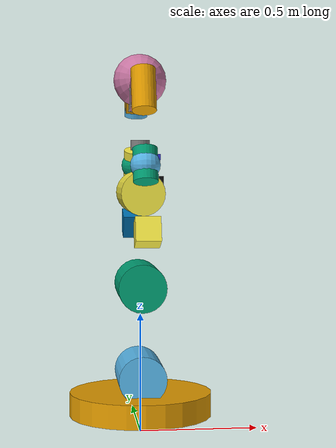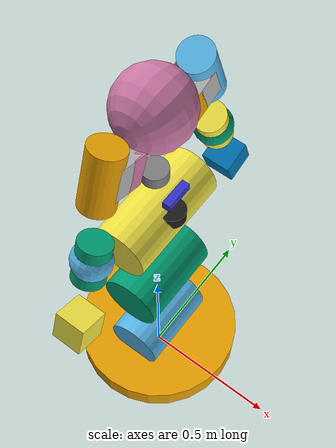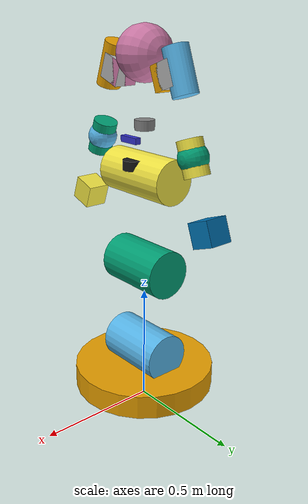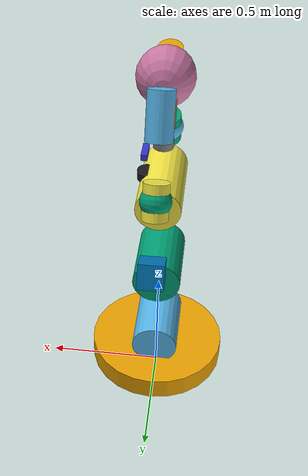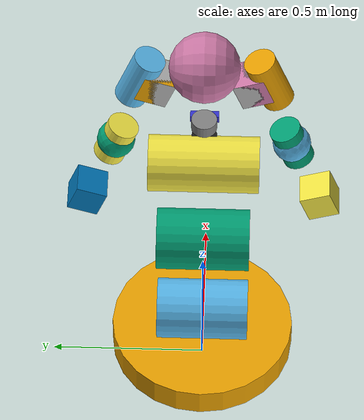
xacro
<?xml version="1.0"?>
<robot xmlns:xacro="http://www.ros.org/wiki/xacro" name="astribot_s1">

  <!-- Base URDF (copied from fiveages-sim/robot_descriptions with mesh paths fixed) -->
  <xacro:include filename="$(find astribot_description)/urdf/astribot_s1_base.urdf"/>

  <!-- ─── World anchor ─────────────────────────────────────────── -->
  <link name="world"/>

  <joint name="world_to_base_link" type="fixed">
    <parent link="world"/>
    <child  link="base_link"/>
    <!-- z=0.12: approximate wheel radius — adjust after visual inspection -->
    <origin xyz="0 0 0.12" rpy="0 0 0"/>
  </joint>

  <!-- ─── 2D LiDAR link ────────────────────────────────────────── -->
  <link name="lidar_2d_link">
    <visual>
      <geometry><cylinder radius="0.04" length="0.04"/></geometry>
      <material name="black"><color rgba="0.1 0.1 0.1 1"/></material>
    </visual>
    <collision>
      <geometry><cylinder radius="0.04" length="0.04"/></geometry>
    </collision>
    <inertial>
      <mass value="0.1"/>
      <inertia ixx="1e-4" ixy="0" ixz="0" iyy="1e-4" iyz="0" izz="1e-4"/>
    </inertial>
  </link>

  <joint name="torso_to_lidar_2d" type="fixed">
    <parent link="torso_link_4"/>
    <child  link="lidar_2d_link"/>
    <origin xyz="0.06 0 0.05" rpy="0 0 0"/>
  </joint>

  <!-- ─── 3D LiDAR link ────────────────────────────────────────── -->
  <link name="mid360_link">
    <visual>
      <geometry><cylinder radius="0.04" length="0.04"/></geometry>
      <material name="grey"><color rgba="0.5 0.5 0.5 1"/></material>
    </visual>
    <collision>
      <geometry><cylinder radius="0.04" length="0.04"/></geometry>
    </collision>
    <inertial>
      <mass value="0.1"/>
      <inertia ixx="1e-4" ixy="0" ixz="0" iyy="1e-4" iyz="0" izz="1e-4"/>
    </inertial>
  </link>

  <joint name="torso_to_mid360" type="fixed">
    <parent link="torso_link_4"/>
    <child  link="mid360_link"/>
    <origin xyz="0.0 0 0.20" rpy="0 0 0"/>
  </joint>

  <!-- ─── RGB Camera link ──────────────────────────────────────── -->
  <link name="d435_link">
    <visual>
      <geometry><box size="0.025 0.090 0.025"/></geometry>
      <material name="blue"><color rgba="0.2 0.2 0.8 1"/></material>
    </visual>
    <collision>
      <geometry><box size="0.025 0.090 0.025"/></geometry>
    </collision>
    <inertial>
      <mass value="0.072"/>
      <inertia ixx="1e-4" ixy="0" ixz="0" iyy="1e-4" iyz="0" izz="1e-4"/>
    </inertial>
  </link>

  <joint name="torso_to_d435" type="fixed">
    <parent link="torso_link_4"/>
    <child  link="d435_link"/>
    <origin xyz="0.07 0 0.15" rpy="0 0 0"/>
  </joint>

  <!-- ─── IMU link ─────────────────────────────────────────────── -->
  <link name="imu_link">
    <inertial>
      <mass value="0.01"/>
      <inertia ixx="1e-6" ixy="0" ixz="0" iyy="1e-6" iyz="0" izz="1e-6"/>
    </inertial>
  </link>

  <joint name="base_to_imu" type="fixed">
    <parent link="base_link"/>
    <child  link="imu_link"/>
    <origin xyz="0 0 0.05" rpy="0 0 0"/>
  </joint>

  <!--  Gazebo sensor plugins                                      -->

  <!-- 2D LiDAR → /scan -->
  <gazebo reference="lidar_2d_link">
    <sensor name="lidar_2d" type="ray">
      <always_on>true</always_on>
      <update_rate>15</update_rate>
      <visualize>false</visualize>
      <ray>
        <scan>
          <horizontal>
            <samples>720</samples>
            <resolution>1</resolution>
            <min_angle>-3.14159</min_angle>
            <max_angle>3.14159</max_angle>
          </horizontal>
        </scan>
        <range>
          <min>0.10</min>
          <max>30.0</max>
          <resolution>0.01</resolution>
        </range>
      </ray>
      <plugin name="lidar_2d_plugin" filename="libgazebo_ros_ray_sensor.so">
        <ros><remapping>~/out:=/scan</remapping></ros>
        <output_type>sensor_msgs/LaserScan</output_type>
        <frame_name>lidar_2d_link</frame_name>
      </plugin>
    </sensor>
  </gazebo>

  <!-- 3D LiDAR → /points -->
  <gazebo reference="mid360_link">
    <sensor name="mid360" type="gpu_ray">
      <always_on>true</always_on>
      <update_rate>10</update_rate>
      <visualize>false</visualize>
      <ray>
        <scan>
          <horizontal>
            <samples>360</samples>
            <resolution>1</resolution>
            <min_angle>-3.14159</min_angle>
            <max_angle>3.14159</max_angle>
          </horizontal>
          <vertical>
            <samples>30</samples>
            <resolution>1</resolution>
            <min_angle>-0.5236</min_angle>
            <max_angle>0.5236</max_angle>
          </vertical>
        </scan>
        <range>
          <min>0.10</min>
          <max>40.0</max>
          <resolution>0.01</resolution>
        </range>
      </ray>
      <plugin name="mid360_plugin" filename="libgazebo_ros_ray_sensor.so">
        <ros><remapping>~/out:=/points</remapping></ros>
        <output_type>sensor_msgs/PointCloud2</output_type>
        <frame_name>mid360_link</frame_name>
      </plugin>
    </sensor>
  </gazebo>

  <!-- RGB Camera → /camera/image_raw -->
  <gazebo reference="d435_link">
    <sensor name="d435_camera" type="camera">
      <always_on>true</always_on>
      <update_rate>30</update_rate>
      <visualize>false</visualize>
      <camera>
        <horizontal_fov>1.2217</horizontal_fov>
        <image>
          <width>640</width>
          <height>480</height>
          <format>R8G8B8</format>
        </image>
        <clip><near>0.02</near><far>100.0</far></clip>
      </camera>
      <plugin name="camera_plugin" filename="libgazebo_ros_camera.so">
        <camera_name>camera</camera_name>
        <frame_name>d435_link</frame_name>
      </plugin>
    </sensor>
  </gazebo>

  <!-- Depth Camera → /camera/depth/depth/image_raw + /camera/depth/points -->
  <gazebo reference="d435_link">
    <sensor name="d435_depth" type="depth">
      <always_on>true</always_on>
      <update_rate>15</update_rate>
      <visualize>false</visualize>
      <camera name="depth_camera">
        <horizontal_fov>1.2217</horizontal_fov>
        <image>
          <width>640</width>
          <height>480</height>
          <format>R32F</format>
        </image>
        <clip><near>0.1</near><far>10.0</far></clip>
      </camera>
      <plugin name="depth_camera_plugin" filename="libgazebo_ros_camera.so">
        <ros>
          <namespace>/camera</namespace>
        </ros>
        <camera_name>rgbd</camera_name>
        <frame_name>d435_link</frame_name>
        <min_depth>0.1</min_depth>
        <max_depth>10.0</max_depth>
      </plugin>
    </sensor>
  </gazebo>

  <!-- IMU → /imu/data -->
  <gazebo reference="imu_link">
    <sensor name="imu_sensor" type="imu">
      <always_on>true</always_on>
      <update_rate>200</update_rate>
      <plugin name="imu_plugin" filename="libgazebo_ros_imu_sensor.so">
        <ros><remapping>~/out:=/imu/data</remapping></ros>
        <frame_name>imu_link</frame_name>
      </plugin>
    </sensor>
  </gazebo>

</robot>

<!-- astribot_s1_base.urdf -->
<!-- |    This document was autogenerated by xacro from astribot_s1_whole_body_without_wheel.xacro | -->
<!-- |    EDITING THIS FILE BY HAND IS NOT RECOMMENDED                                 | -->
<!-- run: xacro astribot_s1_whole_body.xacro -o astribot_s1_whole_body.urdf to generate the following .urdf file -->
<robot name="astribot_s1">

	<link name="base_link">
		<inertial>
			<origin xyz="-0.062784 0.007017 0.035375" />
			<mass value="39.24781" />
			<inertia ixx="1.071997" ixy="0.015889" ixz="-0.058447" iyy="1.218431" iyz="-0.002015" izz="1.489411" />
		</inertial>
		<visual>
			<geometry>
				<cylinder length="0.1" radius="0.3" />
			</geometry>
		</visual>
		<collision>
			<origin xyz="0 0 -0.05" />
			<geometry>
				<cylinder length="0.1" radius="0.3" />
			</geometry>
		</collision>
	</link>
	<link name="torso_link_1">
		<inertial>
			<origin xyz="-0.15249 0.00021066 -0.0033476" />
			<mass value="7.3766" />
			<inertia ixx="0.028834" ixy="-0.0052759" ixz="0.00010767" iyy="0.1483" iyz="1.1652E-05" izz="0.14268" />
		</inertial>
		<visual>

			<geometry>
				<cylinder length="0.3" radius="0.1" />
			</geometry>
		</visual>
		<collision>
			<origin rpy="0 1.57 0" xyz="-0.15 0 0" />
			<geometry>
				<cylinder length="0.3" radius="0.1" />
			</geometry>
		</collision>
	</link>
	<joint name="torso_joint_1" type="revolute">
		<origin rpy="-1.5708 1.5708 0" xyz="0 0 0.12" />
		<parent link="base_link" />
		<child link="torso_link_1" />
		<axis xyz="0 0 1" />
		<limit effort="100" lower="0.0" upper="1.4" velocity="6.0" />
	</joint>
	<link name="torso_link_2">
		<inertial>
			<origin xyz="-0.22214 0.028873 0.00059024" />
			<mass value="5.6183" />
			<inertia ixx="0.0082545" ixy="0.0011523" ixz="0.00035614" iyy="0.012677" iyz="-5.8287E-05" izz="0.017512" />
		</inertial>
		<visual>

			<geometry>
				<cylinder length="0.3" radius="0.1" />
			</geometry>
		</visual>
		<collision>
			<origin rpy="0 1.57 -0.25" xyz="-0.15 0.03 0" />
			<geometry>
				<cylinder length="0.3" radius="0.1" />
			</geometry>
		</collision>
	</link>
	<joint name="torso_joint_2" type="revolute">
		<origin xyz="-0.38 0 0" />
		<parent link="torso_link_1" />
		<child link="torso_link_2" />
		<axis xyz="0 0 1" />
		<limit effort="100" lower="-2.3" upper="0.0" velocity="6.0" />
	</joint>
	<link name="torso_link_3">
		<inertial>
			<origin xyz="-0.017519 0.00059523 0.00025821" />
			<mass value="0.49013" />
			<inertia ixx="0.00022212" ixy="-2.6767E-07" ixz="4.3987E-07" iyy="0.00036522" iyz="3.8834E-07" izz="0.00038039" />
		</inertial>
		<visual>

			<geometry>
				<cylinder length="0.35" radius="0.09" />
			</geometry>
		</visual>
		<collision>
			<origin rpy="0 1.57 0" xyz="-0.18 0.01 0" />
			<geometry>
				<cylinder length="0.35" radius="0.09" />
			</geometry>
		</collision>
	</link>
	<joint name="torso_joint_3" type="revolute">
		<origin xyz="-0.390 0 0" />
		<parent link="torso_link_2" />
		<child link="torso_link_3" />
		<axis xyz="0 0 1" />
		<limit effort="100" lower="0.0" upper="2.3" velocity="6.0" />
	</joint>
	<link name="torso_link_4">
		<inertial>
			<origin xyz="0.00476227191516749 -4.56966810241128E-05 0.242912573510671" />
			<mass value="8.385" />
			<inertia ixx="0.0165768322563514" ixy="-9.94098112646385E-06" ixz="-0.000100011483384926" iyy="0.014904355097835" iyz="9.86752047032885E-07" izz="0.0110629318711333" />
		</inertial>
		<visual>

			<geometry>
				<box size="0.1 0.1 0.1" /></geometry>
		</visual>
	</link>
	<joint name="torso_joint_4" type="revolute">
		<origin rpy="1.5708 0 -1.5708" xyz="0 0 0" />
		<parent link="torso_link_3" />
		<child link="torso_link_4" />
		<axis xyz="0 0 1" />
		<limit effort="100" lower="-1.5" upper="1.5" velocity="6.0" />
	</joint>
	<link name="head_link_1">
		<inertial>
			<origin xyz="0.00003191 -0.00038566 -0.02579910" />
			<mass value="0.13910581" />
			<inertia ixx="0.00004567" ixy="0.00000003" ixz="0.00000004" iyy="0.00004789" iyz="-0.00000091" izz="0.00003779" />
		</inertial>
		<visual>

			<geometry>
				<box size="0.1 0.1 0.1" /></geometry>
		</visual>
	</link>
	<joint name="head_joint_1" type="revolute">
		<origin xyz="0 0 0.46765" />
		<parent link="torso_link_4" />
		<child link="head_link_1" />
		<axis xyz="0 0 1" />
		<limit effort="100" lower="-1.57" upper="1.57" velocity="4.0" />
	</joint>
	<link name="head_link_2">
		<inertial>
			<origin xyz="0.00705824 -0.14472601 -0.00061724" />
			<mass value="0.97012447" />
			<inertia ixx="0.00555660" ixy="-0.00041600" ixz="-0.00000036" iyy="0.00151908" iyz="-0.00012043" izz="0.00544493" />
		</inertial>
		<visual>

			<geometry>
				<sphere radius="0.11" />
			</geometry>
		</visual>
		<collision>
			<origin xyz="0 -0.15 0" />
			<geometry>
				<sphere radius="0.11" />
			</geometry>
		</collision>
	</link>
	<joint name="head_joint_2" type="revolute">
		<origin rpy="-1.5708 0 0" xyz="0 0 0" />
		<parent link="head_link_1" />
		<child link="head_link_2" />
		<axis xyz="0 0 1" />
		<limit effort="100" lower="-1.22" upper="1.22" velocity="4.0" />
	</joint>
	<link name="left_link_1">
		<inertial>
			<origin xyz="0.00012026 0.00047499 -0.05682561" />
			<mass value="0.59936716" />
			<inertia ixx="0.00064791" ixy="0.00000149" ixz="0.00000133" iyy="0.00065264" iyz="0.00000160" izz="0.00050137" />
		</inertial>
		<visual>

			<geometry>
				<box size="0.1 0.1 0.1" /></geometry>
		</visual>
	</link>
	<joint name="left_joint_1" type="revolute">
		<origin rpy="0 -1.22173 -1.5708" xyz="0 0.150002 0.399354" />
		<parent link="torso_link_4" />
		<child link="left_link_1" />
		<axis xyz="0 0 1" />
		<limit effort="265" lower="-3.0" upper="3.0" velocity="8.4" />
	</joint>
	<link name="left_link_2">
		<inertial>
			<origin xyz="-0.00396228 0.03490708 0.04270156" />
			<mass value="1.43694657" />
			<inertia ixx="0.00360751" ixy="-0.00009193" ixz="0.00007764" iyy="0.00283747" iyz="0.00054945" izz="0.00172927" />
		</inertial>
		<visual>

			<geometry>
				<box size="0.1 0.1 0.1" /></geometry>
		</visual>
	</link>
	<joint name="left_joint_2" type="revolute">
		<origin rpy="1.5708 0 0" xyz="0 0 0" />
		<parent link="left_link_1" />
		<child link="left_link_2" />
		<axis xyz="0 0 1" />
		<limit effort="265" lower="-1.4" upper="0.4" velocity="8.4" />
	</joint>
	<link name="left_link_3">
		<inertial>
			<origin xyz="0.00531263 0.00020707 0.16136713" />
			<mass value="2.0926399" />
			<inertia ixx="0.01752179" ixy="2.336e-05" ixz="0.00144018" iyy="0.01784671" iyz="-3.027e-05" izz="0.0021843" />
		</inertial>
		<visual>

			<geometry>
				<cylinder length="0.18" radius="0.05" />
			</geometry>
		</visual>
		<collision>
			<origin xyz="0 0 0.15" />
			<geometry>
				<cylinder length="0.18" radius="0.05" />
			</geometry>
		</collision>
	</link>
	<joint name="left_joint_3" type="revolute">
		<origin rpy="1.5708 0 -1.5708" xyz="0 0.05 0" />
		<parent link="left_link_2" />
		<child link="left_link_3" />
		<axis xyz="0 0 1" />
		<limit effort="132" lower="-3.0" upper="1.4" velocity="8.4" />
	</joint>
	<link name="left_link_4">
		<inertial>
			<origin xyz="0.00017294 -0.01269315 0.00196140" />
			<mass value="0.36587933" />
			<inertia ixx="0.00047693" ixy="0.00000635" ixz=" 0.00000135" iyy="0.00036801" iyz="0.00000705" izz="0.00050082" />
		</inertial>
		<visual>

			<geometry>
				<sphere radius="0.06" />
			</geometry>
		</visual>
		<collision>

			<geometry>
				<sphere radius="0.06" />
			</geometry>
		</collision>
	</link>
	<joint name="left_joint_4" type="revolute">
		<origin rpy="-1.5708 0 0" xyz="0.03 0 0.309" />
		<parent link="left_link_3" />
		<child link="left_link_4" />
		<axis xyz="0 0 1" />
		<limit effort="142" lower="0.0" upper="2.4" velocity="15" />
	</joint>
	<link name="left_link_5">
		<inertial>
			<origin xyz="-0.00032037 -0.00015185 0.15370447" />
			<mass value="1.24085064" />
			<inertia ixx="0.00454092" ixy="1.58e-06" ixz="-5.91e-06" iyy="0.00438922" iyz="-4.927e-05" izz="0.00079442" />
		</inertial>
		<visual>

			<geometry>
				<cylinder length="0.14" radius="0.05" />
			</geometry>
		</visual>
		<collision>
			<origin xyz="0 0 0.14" />
			<geometry>
				<cylinder length="0.14" radius="0.05" />
			</geometry>
		</collision>
	</link>
	<joint name="left_joint_5" type="revolute">
		<origin rpy="1.5708 0 0" xyz="0 0 0" />
		<parent link="left_link_4" />
		<child link="left_link_5" />
		<axis xyz="0 0 1" />
		<limit effort="71" lower="-2.0" upper="2.0" velocity="15" />
	</joint>
	<link name="left_link_6">
		<inertial>
			<origin xyz="-0.00010311 0.00001218 0.00013181" />
			<mass value="0.22465307" />
			<inertia ixx="0.00016474" ixy="0.00000007" ixz="0.00000025" iyy="0.00015608" iyz="0.00000018" izz="0.00008555" />
		</inertial>
		<visual>

			<geometry>
				<box size="0.1 0.1 0.1" /></geometry>
		</visual>
	</link>
	<joint name="left_joint_6" type="revolute">
		<origin rpy="-1.5708 0 0" xyz="0 0 0.277" />
		<parent link="left_link_5" />
		<child link="left_link_6" />
		<axis xyz="0 0 1" />
		<limit effort="20" lower="-0.6" upper="0.6" velocity="16.8" />
	</joint>
	<link name="left_link_7">
		<inertial>
			<origin xyz="4.333e-05 -0.00723447 -0.00362428" />
			<mass value="0.12772019" />
			<inertia ixx="0.00013672" ixy="1.6e-07" ixz="-2.4e-07" iyy="0.00010783" iyz="-3.35e-06" izz="5.858e-05" />
		</inertial>
		<visual>
			<geometry>
				<sphere radius="0.05" />
			</geometry>
		</visual>
		<collision>
			<origin xyz="0.006 0 0" />
			<geometry>
				<sphere radius="0.05" />
			</geometry>
		</collision>
	</link>

	<joint name="left_joint_7" type="revolute">
		<origin rpy="0 1.5708 0" xyz="0 0 0" />
		<parent link="left_link_6" />
		<child link="left_link_7" />
		<axis xyz="0 0 1" />
		<limit effort="20" lower="-1.4" upper="1.4" velocity="16.8" />
	</joint>

	<link name="right_link_1">
		<inertial>
			<origin xyz="0.00012026 0.00047499 -0.05682561" />
			<mass value="0.59936716" />
			<inertia ixx="0.00064791" ixy="0.00000149" ixz="0.00000133" iyy="0.00065264" iyz="0.00000160" izz="0.00050137" />
		</inertial>
		<visual>
			<geometry>
				<box size="0.1 0.1 0.1" /></geometry>
		</visual>
	</link>
	<joint name="right_joint_1" type="revolute">
		<origin rpy="0 -1.22173 1.5708" xyz="0 -0.150002 0.399354" />
		<parent link="torso_link_4" />
		<child link="right_link_1" />
		<axis xyz="0 0 1" />
		<limit effort="265" lower="-3.0" upper="3.0" velocity="8.4" />
	</joint>
	<link name="right_link_2">
		<inertial>
			<origin xyz="-0.00384709 0.03502105 -0.04050705" />
			<mass value="1.45811037" />
			<inertia ixx="0.00394196" ixy="-8.846e-05" ixz="-3.742e-05" iyy="0.00316298" iyz="-0.0007079" izz="0.00177295" />
		</inertial>
		<visual>

			<geometry>
				<box size="0.1 0.1 0.1" /></geometry>
		</visual>
	</link>
	<joint name="right_joint_2" type="revolute">
		<origin rpy="1.5708 0 0" xyz="0 0 0" />
		<parent link="right_link_1" />
		<child link="right_link_2" />
		<axis xyz="0 0 1" />
		<limit effort="265" lower="-1.4" upper="0.4" velocity="8.4" />
	</joint>
	<link name="right_link_3">
		<inertial>
			<origin xyz="0.00531263 0.00020707 0.16136713" />
			<mass value="2.0926399" />
			<inertia ixx="0.01752179" ixy="2.336e-05" ixz="0.00144018" iyy="0.01784671" iyz="-3.027e-05" izz="0.0021843" />
		</inertial>
		<visual>

			<geometry>
				<cylinder length="0.18" radius="0.05" />
			</geometry>
		</visual>
		<collision>
			<origin xyz="0 0 0.15" />
			<geometry>
				<cylinder length="0.18" radius="0.05" />
			</geometry>
		</collision>
	</link>
	<joint name="right_joint_3" type="revolute">
		<origin rpy="1.5708 0 -1.5708" xyz="0 0.05 0" />
		<parent link="right_link_2" />
		<child link="right_link_3" />
		<axis xyz="0 0 1" />
		<limit effort="132" lower="-1.4" upper="3.0" velocity="8.4" />
	</joint>
	<link name="right_link_4">
		<inertial>
			<origin xyz="0.00017294 -0.01269315 0.00196140" />
			<mass value="0.36587933" />
			<inertia ixx="0.00047693" ixy="0.00000635" ixz=" 0.00000135" iyy="0.00036801" iyz="0.00000705" izz="0.00050082" />
		</inertial>
		<visual>

			<geometry>
				<sphere radius="0.06" />
			</geometry>
		</visual>
		<collision>

			<geometry>
				<sphere radius="0.06" />
			</geometry>
		</collision>
	</link>
	<joint name="right_joint_4" type="revolute">
		<origin rpy="-1.5708 0 0" xyz="0.03 0 0.309" />
		<parent link="right_link_3" />
		<child link="right_link_4" />
		<axis xyz="0 0 1" />
		<limit effort="142" lower="0.0" upper="2.4" velocity="15" />
	</joint>
	<link name="right_link_5">
		<inertial>
			<origin xyz="-0.00032037 -0.00015185 0.15370447" />
			<mass value="1.24085064" />
			<inertia ixx="0.00454092" ixy="1.58e-06" ixz="-5.91e-06" iyy="0.00438922" iyz="-4.927e-05" izz="0.00079442" />
		</inertial>
		<visual>

			<geometry>
				<cylinder length="0.14" radius="0.05" />
			</geometry>
		</visual>
		<collision>
			<origin xyz="0 0 0.14" />
			<geometry>
				<cylinder length="0.14" radius="0.05" />
			</geometry>
		</collision>
	</link>
	<joint name="right_joint_5" type="revolute">
		<origin rpy="1.5708 0 0" xyz="0 0 0" />
		<parent link="right_link_4" />
		<child link="right_link_5" />
		<axis xyz="0 0 1" />
		<limit effort="71" lower="-2.0" upper="2.0" velocity="15" />
	</joint>
	<link name="right_link_6">
		<inertial>
			<origin xyz="-0.00010311 0.00001218 0.00013181" />
			<mass value="0.22465307" />
			<inertia ixx="0.00016474" ixy="0.00000007" ixz="0.00000025" iyy="0.00015608" iyz="0.00000018" izz="0.00008555" />
		</inertial>
		<visual>
			<geometry>
				<box size="0.1 0.1 0.1" /></geometry>
		</visual>
	</link>

	<joint name="right_joint_6" type="revolute">
		<origin rpy="-1.5708 0 0" xyz="0 0 0.277" />
		<parent link="right_link_5" />
		<child link="right_link_6" />
		<axis xyz="0 0 1" />
		<limit effort="20" lower="-0.6" upper="0.6" velocity="16.8" />
	</joint>

	<link name="right_link_7">
		<inertial>
			<origin xyz="4.333e-05 -0.00723447 -0.00362428" />
			<mass value="0.12772019" />
			<inertia ixx="0.00013672" ixy="1.6e-07" ixz="-2.4e-07" iyy="0.00010783" iyz="-3.35e-06" izz="5.858e-05" />
		</inertial>
		<visual>
			<geometry>
				<sphere radius="0.05" />
			</geometry>
		</visual>
		<collision>
			<origin xyz="0.006 0 0" />
			<geometry>
				<sphere radius="0.05" />
			</geometry>
		</collision>
	</link>
	<joint name="right_joint_7" type="revolute">
		<origin rpy="0 1.5708 0" xyz="0 0 0" />
		<parent link="right_link_6" />
		<child link="right_link_7" />
		<axis xyz="0 0 1" />
		<limit effort="20" lower="-1.4" upper="1.4" velocity="16.8" />
	</joint>
</robot>
